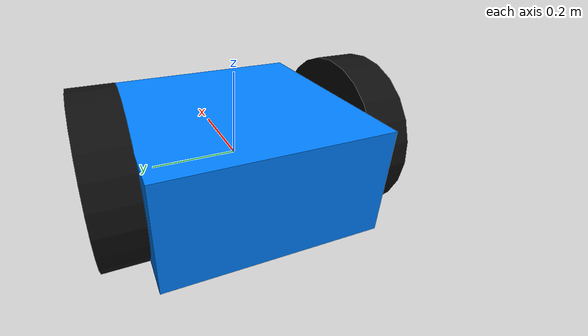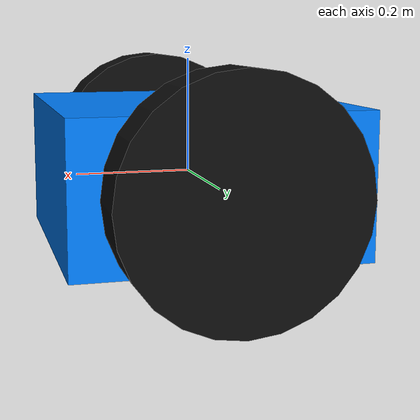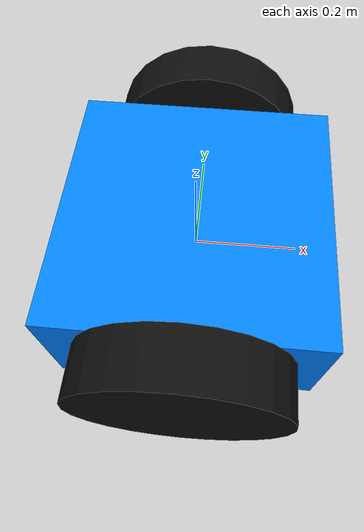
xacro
<?xml version="1.0"?>
<robot name="front_robot"
  xmlns:xacro="http://www.ros.org/wiki/xacro">
  <xacro:property name="M_PI" value="3.1415926"/>

  <!-- base_link -->
  <link name="base_link">

    <visual>
      <origin xyz="0.0 0.0 0.0" rpy="0.0 0.0 0.0"/>
      <geometry>
        <box size="0.5 0.5 0.25"/>
      </geometry>
      <material name="blue">
        <color rgba="0.0 0.5 1.0 1.0"/>
      </material>
    </visual>

    <collision>
      <origin xyz="0.0 0.0 0.0" rpy="0.0 0.0 0.0"/>
      <geometry>
        <box size="0.5 0.5 0.25"/>
      </geometry>
    </collision>

    <inertial>
      <mass value="5"/>
      <inertia ixx="0.1" ixy="0.0" ixz="0.0" iyy="0.1" iyz="0.0" izz="0.1"/>
    </inertial>

  </link>

  <gazebo reference="base_link">
    <material>Gazebo/Blue</material>
  </gazebo>

  <!-- right wheel -->
  <link name="right_wheel">

    <visual>
      <origin xyz="0.0 0.0 0.0" rpy="${M_PI/2} 0.0 0.0"/>
      <geometry>
        <cylinder radius="0.2" length="0.1"/>
      </geometry>
      <material name="black">
        <color rgba="0.05 0.05 0.05 1.0"/>
      </material>
    </visual>

    <collision>
      <origin xyz="0.0 0.0 0.0" rpy="${M_PI/2} 0.0 0.0"/>
      <geometry>
        <cylinder radius="0.2" length="0.1"/>
      </geometry>
    </collision>

    <inertial>
      <mass value="0.5"/>
      <inertia ixx="0.01" ixy="0.0" ixz="0.0" iyy="0.005" iyz="0.0" izz="0.005"/>
    </inertial>

  </link>

  <gazebo reference="right_wheel">
    <material>Gazebo/Black</material>
  </gazebo>

  <!-- left wheel -->
  <link name="left_wheel">
    <visual>
      <material name="black"/>
      <origin xyz="0.0 0.0 0.0" rpy="${M_PI/2} 0.0 0.0"/>
      <geometry>
        <cylinder radius="0.2" length="0.1"/>
      </geometry>
    </visual>

    <collision>
      <origin xyz="0.0 0.0 0.0" rpy="${M_PI/2} 0.0 0.0"/>
      <geometry>
        <cylinder radius="0.2" length="0.1"/>
      </geometry>
    </collision>

    <inertial>
      <mass value="0.5"/>
      <inertia ixx="0.01" ixy="0.0" ixz="0.0" iyy="0.005" iyz="0.0" izz="0.005"/>
    </inertial>

  </link>

  <gazebo reference="left_wheel">
    <material>Gazebo/Black</material>
  </gazebo>

  <!-- joint right -->
  <joint name="joint_right_wheel" type="continuous">
    <origin xyz="0.0 -0.3 0.0" rpy="0.0 0.0 0.0"/>
    <parent link="base_link"/>
    <child link="right_wheel"/>
    <axis xyz="0.0 1.0 0.0"/>
  </joint>

  <!-- joint left -->
  <joint name="joint_left_wheel" type="continuous">
    <origin xyz="0.0 0.3 0.0" rpy="0.0 0.0 0.0"/>
    <parent link="base_link"/>
    <child link="left_wheel"/>
    <axis xyz="0.0 1.0 0.0"/>
  </joint>

</robot>
